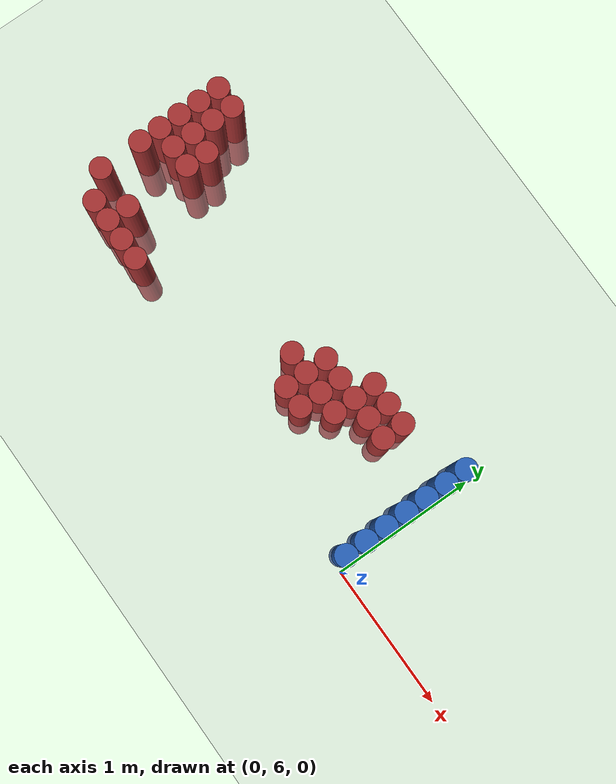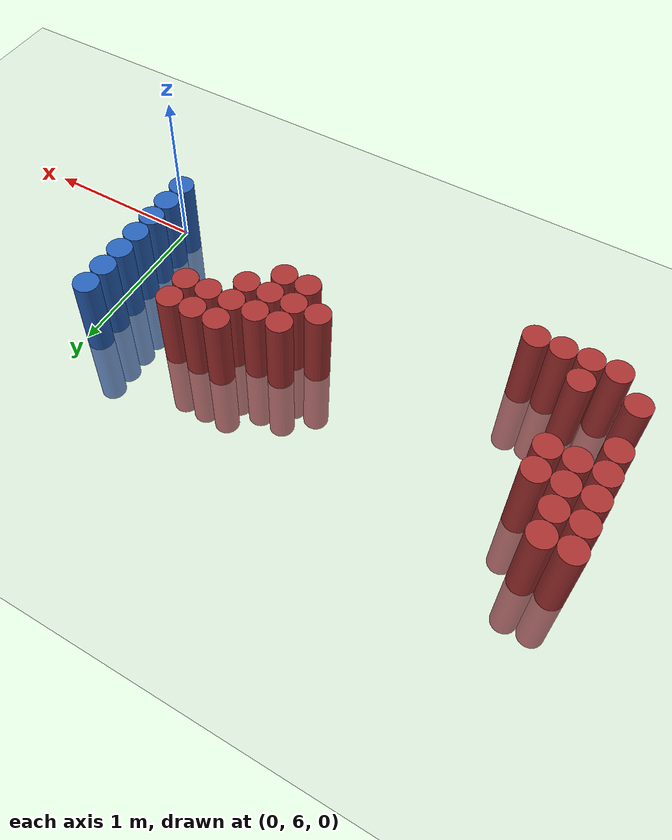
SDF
<sdf version="1.6">
 <world name="default">
  <model name="ground_plane">
   <static>1</static>
   <link name="link">
    <collision name="collision">
     <geometry><plane><normal>0 0 1</normal><size>100 100</size></plane></geometry>
     <surface><friction><ode><mu>100</mu><mu2>50</mu2></ode></friction></surface>
    </collision>
    <visual name="visual">
     <cast_shadows>0</cast_shadows>
     <geometry><plane><normal>0 0 1</normal><size>100 100</size></plane></geometry>
     <material>
      <script><uri>file://media/materials/scripts/gazebo.material</uri><name>Gazebo/Grey</name></script>
     </material>
    </visual>
   </link>
  </model>
  <model name="unit_cylinder_202">
   <static>1</static>
   <pose>-2.925000 6.225000 0.000000 0.000000 0.000000 0.000000</pose>
   <link name="link">
    <inertial>
     <mass>1</mass>
     <inertia><ixx>0.145833</ixx><ixy>0</ixy><ixz>0</ixz><iyy>0.145833</iyy><iyz>0</iyz><izz>0.125</izz></inertia>
    </inertial>
    <collision name="collision">
     <geometry><cylinder><radius>0.075000</radius><length>1</length></cylinder></geometry>
    </collision>
    <visual name="visual">
     <geometry><cylinder><radius>0.075000</radius><length>1</length></cylinder></geometry>
     <material>
      <ambient>0.648000 0.192000 0.192000 1</ambient>
      <diffuse>0.648000 0.192000 0.192000 1</diffuse>
     </material>
     <material>
      <script><name>Gazebo/Grey</name><uri>file://media/materials/scripts/gazebo.material</uri></script>
     </material>
    </visual>
    <sensor name="sensor_contact" type="contact"><contact><collision>collision</collision></contact></sensor>
   </link>
   <plugin filename="gz-sim-touchplugin-system" name="gz::sim::systems::TouchPlugin">
    <target>robot</target>
    <namespace>robot</namespace>
    <time>0.001</time>
    <enabled>true</enabled>
   </plugin>
  </model>
  <model name="unit_cylinder_203">
   <static>1</static>
   <pose>-2.925000 6.525000 0.000000 0.000000 0.000000 0.000000</pose>
   <link name="link">
    <inertial>
     <mass>1</mass>
     <inertia><ixx>0.145833</ixx><ixy>0</ixy><ixz>0</ixz><iyy>0.145833</iyy><iyz>0</iyz><izz>0.125</izz></inertia>
    </inertial>
    <collision name="collision">
     <geometry><cylinder><radius>0.075000</radius><length>1</length></cylinder></geometry>
    </collision>
    <visual name="visual">
     <geometry><cylinder><radius>0.075000</radius><length>1</length></cylinder></geometry>
     <material>
      <ambient>0.648000 0.192000 0.192000 1</ambient>
      <diffuse>0.648000 0.192000 0.192000 1</diffuse>
     </material>
     <material>
      <script><name>Gazebo/Grey</name><uri>file://media/materials/scripts/gazebo.material</uri></script>
     </material>
    </visual>
    <sensor name="sensor_contact" type="contact"><contact><collision>collision</collision></contact></sensor>
   </link>
   <plugin filename="gz-sim-touchplugin-system" name="gz::sim::systems::TouchPlugin">
    <target>robot</target>
    <namespace>robot</namespace>
    <time>0.001</time>
    <enabled>true</enabled>
   </plugin>
  </model>
  <model name="unit_cylinder_204">
   <static>1</static>
   <pose>-2.925000 6.675000 0.000000 0.000000 0.000000 0.000000</pose>
   <link name="link">
    <inertial>
     <mass>1</mass>
     <inertia><ixx>0.145833</ixx><ixy>0</ixy><ixz>0</ixz><iyy>0.145833</iyy><iyz>0</iyz><izz>0.125</izz></inertia>
    </inertial>
    <collision name="collision">
     <geometry><cylinder><radius>0.075000</radius><length>1</length></cylinder></geometry>
    </collision>
    <visual name="visual">
     <geometry><cylinder><radius>0.075000</radius><length>1</length></cylinder></geometry>
     <material>
      <ambient>0.648000 0.192000 0.192000 1</ambient>
      <diffuse>0.648000 0.192000 0.192000 1</diffuse>
     </material>
     <material>
      <script><name>Gazebo/Grey</name><uri>file://media/materials/scripts/gazebo.material</uri></script>
     </material>
    </visual>
    <sensor name="sensor_contact" type="contact"><contact><collision>collision</collision></contact></sensor>
   </link>
   <plugin filename="gz-sim-touchplugin-system" name="gz::sim::systems::TouchPlugin">
    <target>robot</target>
    <namespace>robot</namespace>
    <time>0.001</time>
    <enabled>true</enabled>
   </plugin>
  </model>
  <model name="unit_cylinder_205">
   <static>1</static>
   <pose>-2.925000 6.825000 0.000000 0.000000 0.000000 0.000000</pose>
   <link name="link">
    <inertial>
     <mass>1</mass>
     <inertia><ixx>0.145833</ixx><ixy>0</ixy><ixz>0</ixz><iyy>0.145833</iyy><iyz>0</iyz><izz>0.125</izz></inertia>
    </inertial>
    <collision name="collision">
     <geometry><cylinder><radius>0.075000</radius><length>1</length></cylinder></geometry>
    </collision>
    <visual name="visual">
     <geometry><cylinder><radius>0.075000</radius><length>1</length></cylinder></geometry>
     <material>
      <ambient>0.648000 0.192000 0.192000 1</ambient>
      <diffuse>0.648000 0.192000 0.192000 1</diffuse>
     </material>
     <material>
      <script><name>Gazebo/Grey</name><uri>file://media/materials/scripts/gazebo.material</uri></script>
     </material>
    </visual>
    <sensor name="sensor_contact" type="contact"><contact><collision>collision</collision></contact></sensor>
   </link>
   <plugin filename="gz-sim-touchplugin-system" name="gz::sim::systems::TouchPlugin">
    <target>robot</target>
    <namespace>robot</namespace>
    <time>0.001</time>
    <enabled>true</enabled>
   </plugin>
  </model>
  <model name="unit_cylinder_206">
   <static>1</static>
   <pose>-2.925000 6.975000 0.000000 0.000000 0.000000 0.000000</pose>
   <link name="link">
    <inertial>
     <mass>1</mass>
     <inertia><ixx>0.145833</ixx><ixy>0</ixy><ixz>0</ixz><iyy>0.145833</iyy><iyz>0</iyz><izz>0.125</izz></inertia>
    </inertial>
    <collision name="collision">
     <geometry><cylinder><radius>0.075000</radius><length>1</length></cylinder></geometry>
    </collision>
    <visual name="visual">
     <geometry><cylinder><radius>0.075000</radius><length>1</length></cylinder></geometry>
     <material>
      <ambient>0.648000 0.192000 0.192000 1</ambient>
      <diffuse>0.648000 0.192000 0.192000 1</diffuse>
     </material>
     <material>
      <script><name>Gazebo/Grey</name><uri>file://media/materials/scripts/gazebo.material</uri></script>
     </material>
    </visual>
    <sensor name="sensor_contact" type="contact"><contact><collision>collision</collision></contact></sensor>
   </link>
   <plugin filename="gz-sim-touchplugin-system" name="gz::sim::systems::TouchPlugin">
    <target>robot</target>
    <namespace>robot</namespace>
    <time>0.001</time>
    <enabled>true</enabled>
   </plugin>
  </model>
  <model name="unit_cylinder_207">
   <static>1</static>
   <pose>-2.925000 7.125000 0.000000 0.000000 0.000000 0.000000</pose>
   <link name="link">
    <inertial>
     <mass>1</mass>
     <inertia><ixx>0.145833</ixx><ixy>0</ixy><ixz>0</ixz><iyy>0.145833</iyy><iyz>0</iyz><izz>0.125</izz></inertia>
    </inertial>
    <collision name="collision">
     <geometry><cylinder><radius>0.075000</radius><length>1</length></cylinder></geometry>
    </collision>
    <visual name="visual">
     <geometry><cylinder><radius>0.075000</radius><length>1</length></cylinder></geometry>
     <material>
      <ambient>0.648000 0.192000 0.192000 1</ambient>
      <diffuse>0.648000 0.192000 0.192000 1</diffuse>
     </material>
     <material>
      <script><name>Gazebo/Grey</name><uri>file://media/materials/scripts/gazebo.material</uri></script>
     </material>
    </visual>
    <sensor name="sensor_contact" type="contact"><contact><collision>collision</collision></contact></sensor>
   </link>
   <plugin filename="gz-sim-touchplugin-system" name="gz::sim::systems::TouchPlugin">
    <target>robot</target>
    <namespace>robot</namespace>
    <time>0.001</time>
    <enabled>true</enabled>
   </plugin>
  </model>
  <model name="unit_cylinder_212">
   <static>1</static>
   <pose>-2.775000 6.075000 0.000000 0.000000 0.000000 0.000000</pose>
   <link name="link">
    <inertial>
     <mass>1</mass>
     <inertia><ixx>0.145833</ixx><ixy>0</ixy><ixz>0</ixz><iyy>0.145833</iyy><iyz>0</iyz><izz>0.125</izz></inertia>
    </inertial>
    <collision name="collision">
     <geometry><cylinder><radius>0.075000</radius><length>1</length></cylinder></geometry>
    </collision>
    <visual name="visual">
     <geometry><cylinder><radius>0.075000</radius><length>1</length></cylinder></geometry>
     <material>
      <ambient>0.648000 0.192000 0.192000 1</ambient>
      <diffuse>0.648000 0.192000 0.192000 1</diffuse>
     </material>
     <material>
      <script><name>Gazebo/Grey</name><uri>file://media/materials/scripts/gazebo.material</uri></script>
     </material>
    </visual>
    <sensor name="sensor_contact" type="contact"><contact><collision>collision</collision></contact></sensor>
   </link>
   <plugin filename="gz-sim-touchplugin-system" name="gz::sim::systems::TouchPlugin">
    <target>robot</target>
    <namespace>robot</namespace>
    <time>0.001</time>
    <enabled>true</enabled>
   </plugin>
  </model>
  <model name="unit_cylinder_213">
   <static>1</static>
   <pose>-2.775000 6.675000 0.000000 0.000000 0.000000 0.000000</pose>
   <link name="link">
    <inertial>
     <mass>1</mass>
     <inertia><ixx>0.145833</ixx><ixy>0</ixy><ixz>0</ixz><iyy>0.145833</iyy><iyz>0</iyz><izz>0.125</izz></inertia>
    </inertial>
    <collision name="collision">
     <geometry><cylinder><radius>0.075000</radius><length>1</length></cylinder></geometry>
    </collision>
    <visual name="visual">
     <geometry><cylinder><radius>0.075000</radius><length>1</length></cylinder></geometry>
     <material>
      <ambient>0.648000 0.192000 0.192000 1</ambient>
      <diffuse>0.648000 0.192000 0.192000 1</diffuse>
     </material>
     <material>
      <script><name>Gazebo/Grey</name><uri>file://media/materials/scripts/gazebo.material</uri></script>
     </material>
    </visual>
    <sensor name="sensor_contact" type="contact"><contact><collision>collision</collision></contact></sensor>
   </link>
   <plugin filename="gz-sim-touchplugin-system" name="gz::sim::systems::TouchPlugin">
    <target>robot</target>
    <namespace>robot</namespace>
    <time>0.001</time>
    <enabled>true</enabled>
   </plugin>
  </model>
  <model name="unit_cylinder_214">
   <static>1</static>
   <pose>-2.775000 6.825000 0.000000 0.000000 0.000000 0.000000</pose>
   <link name="link">
    <inertial>
     <mass>1</mass>
     <inertia><ixx>0.145833</ixx><ixy>0</ixy><ixz>0</ixz><iyy>0.145833</iyy><iyz>0</iyz><izz>0.125</izz></inertia>
    </inertial>
    <collision name="collision">
     <geometry><cylinder><radius>0.075000</radius><length>1</length></cylinder></geometry>
    </collision>
    <visual name="visual">
     <geometry><cylinder><radius>0.075000</radius><length>1</length></cylinder></geometry>
     <material>
      <ambient>0.648000 0.192000 0.192000 1</ambient>
      <diffuse>0.648000 0.192000 0.192000 1</diffuse>
     </material>
     <material>
      <script><name>Gazebo/Grey</name><uri>file://media/materials/scripts/gazebo.material</uri></script>
     </material>
    </visual>
    <sensor name="sensor_contact" type="contact"><contact><collision>collision</collision></contact></sensor>
   </link>
   <plugin filename="gz-sim-touchplugin-system" name="gz::sim::systems::TouchPlugin">
    <target>robot</target>
    <namespace>robot</namespace>
    <time>0.001</time>
    <enabled>true</enabled>
   </plugin>
  </model>
  <model name="unit_cylinder_215">
   <static>1</static>
   <pose>-2.775000 6.975000 0.000000 0.000000 0.000000 0.000000</pose>
   <link name="link">
    <inertial>
     <mass>1</mass>
     <inertia><ixx>0.145833</ixx><ixy>0</ixy><ixz>0</ixz><iyy>0.145833</iyy><iyz>0</iyz><izz>0.125</izz></inertia>
    </inertial>
    <collision name="collision">
     <geometry><cylinder><radius>0.075000</radius><length>1</length></cylinder></geometry>
    </collision>
    <visual name="visual">
     <geometry><cylinder><radius>0.075000</radius><length>1</length></cylinder></geometry>
     <material>
      <ambient>0.648000 0.192000 0.192000 1</ambient>
      <diffuse>0.648000 0.192000 0.192000 1</diffuse>
     </material>
     <material>
      <script><name>Gazebo/Grey</name><uri>file://media/materials/scripts/gazebo.material</uri></script>
     </material>
    </visual>
    <sensor name="sensor_contact" type="contact"><contact><collision>collision</collision></contact></sensor>
   </link>
   <plugin filename="gz-sim-touchplugin-system" name="gz::sim::systems::TouchPlugin">
    <target>robot</target>
    <namespace>robot</namespace>
    <time>0.001</time>
    <enabled>true</enabled>
   </plugin>
  </model>
  <model name="unit_cylinder_216">
   <static>1</static>
   <pose>-2.775000 7.125000 0.000000 0.000000 0.000000 0.000000</pose>
   <link name="link">
    <inertial>
     <mass>1</mass>
     <inertia><ixx>0.145833</ixx><ixy>0</ixy><ixz>0</ixz><iyy>0.145833</iyy><iyz>0</iyz><izz>0.125</izz></inertia>
    </inertial>
    <collision name="collision">
     <geometry><cylinder><radius>0.075000</radius><length>1</length></cylinder></geometry>
    </collision>
    <visual name="visual">
     <geometry><cylinder><radius>0.075000</radius><length>1</length></cylinder></geometry>
     <material>
      <ambient>0.648000 0.192000 0.192000 1</ambient>
      <diffuse>0.648000 0.192000 0.192000 1</diffuse>
     </material>
     <material>
      <script><name>Gazebo/Grey</name><uri>file://media/materials/scripts/gazebo.material</uri></script>
     </material>
    </visual>
    <sensor name="sensor_contact" type="contact"><contact><collision>collision</collision></contact></sensor>
   </link>
   <plugin filename="gz-sim-touchplugin-system" name="gz::sim::systems::TouchPlugin">
    <target>robot</target>
    <namespace>robot</namespace>
    <time>0.001</time>
    <enabled>true</enabled>
   </plugin>
  </model>
  <model name="unit_cylinder_225">
   <static>1</static>
   <pose>-2.625000 6.075000 0.000000 0.000000 0.000000 0.000000</pose>
   <link name="link">
    <inertial>
     <mass>1</mass>
     <inertia><ixx>0.145833</ixx><ixy>0</ixy><ixz>0</ixz><iyy>0.145833</iyy><iyz>0</iyz><izz>0.125</izz></inertia>
    </inertial>
    <collision name="collision">
     <geometry><cylinder><radius>0.075000</radius><length>1</length></cylinder></geometry>
    </collision>
    <visual name="visual">
     <geometry><cylinder><radius>0.075000</radius><length>1</length></cylinder></geometry>
     <material>
      <ambient>0.648000 0.192000 0.192000 1</ambient>
      <diffuse>0.648000 0.192000 0.192000 1</diffuse>
     </material>
     <material>
      <script><name>Gazebo/Grey</name><uri>file://media/materials/scripts/gazebo.material</uri></script>
     </material>
    </visual>
    <sensor name="sensor_contact" type="contact"><contact><collision>collision</collision></contact></sensor>
   </link>
   <plugin filename="gz-sim-touchplugin-system" name="gz::sim::systems::TouchPlugin">
    <target>robot</target>
    <namespace>robot</namespace>
    <time>0.001</time>
    <enabled>true</enabled>
   </plugin>
  </model>
  <model name="unit_cylinder_226">
   <static>1</static>
   <pose>-2.625000 6.225000 0.000000 0.000000 0.000000 0.000000</pose>
   <link name="link">
    <inertial>
     <mass>1</mass>
     <inertia><ixx>0.145833</ixx><ixy>0</ixy><ixz>0</ixz><iyy>0.145833</iyy><iyz>0</iyz><izz>0.125</izz></inertia>
    </inertial>
    <collision name="collision">
     <geometry><cylinder><radius>0.075000</radius><length>1</length></cylinder></geometry>
    </collision>
    <visual name="visual">
     <geometry><cylinder><radius>0.075000</radius><length>1</length></cylinder></geometry>
     <material>
      <ambient>0.648000 0.192000 0.192000 1</ambient>
      <diffuse>0.648000 0.192000 0.192000 1</diffuse>
     </material>
     <material>
      <script><name>Gazebo/Grey</name><uri>file://media/materials/scripts/gazebo.material</uri></script>
     </material>
    </visual>
    <sensor name="sensor_contact" type="contact"><contact><collision>collision</collision></contact></sensor>
   </link>
   <plugin filename="gz-sim-touchplugin-system" name="gz::sim::systems::TouchPlugin">
    <target>robot</target>
    <namespace>robot</namespace>
    <time>0.001</time>
    <enabled>true</enabled>
   </plugin>
  </model>
  <model name="unit_cylinder_227">
   <static>1</static>
   <pose>-2.625000 6.675000 0.000000 0.000000 0.000000 0.000000</pose>
   <link name="link">
    <inertial>
     <mass>1</mass>
     <inertia><ixx>0.145833</ixx><ixy>0</ixy><ixz>0</ixz><iyy>0.145833</iyy><iyz>0</iyz><izz>0.125</izz></inertia>
    </inertial>
    <collision name="collision">
     <geometry><cylinder><radius>0.075000</radius><length>1</length></cylinder></geometry>
    </collision>
    <visual name="visual">
     <geometry><cylinder><radius>0.075000</radius><length>1</length></cylinder></geometry>
     <material>
      <ambient>0.648000 0.192000 0.192000 1</ambient>
      <diffuse>0.648000 0.192000 0.192000 1</diffuse>
     </material>
     <material>
      <script><name>Gazebo/Grey</name><uri>file://media/materials/scripts/gazebo.material</uri></script>
     </material>
    </visual>
    <sensor name="sensor_contact" type="contact"><contact><collision>collision</collision></contact></sensor>
   </link>
   <plugin filename="gz-sim-touchplugin-system" name="gz::sim::systems::TouchPlugin">
    <target>robot</target>
    <namespace>robot</namespace>
    <time>0.001</time>
    <enabled>true</enabled>
   </plugin>
  </model>
  <model name="unit_cylinder_228">
   <static>1</static>
   <pose>-2.625000 6.825000 0.000000 0.000000 0.000000 0.000000</pose>
   <link name="link">
    <inertial>
     <mass>1</mass>
     <inertia><ixx>0.145833</ixx><ixy>0</ixy><ixz>0</ixz><iyy>0.145833</iyy><iyz>0</iyz><izz>0.125</izz></inertia>
    </inertial>
    <collision name="collision">
     <geometry><cylinder><radius>0.075000</radius><length>1</length></cylinder></geometry>
    </collision>
    <visual name="visual">
     <geometry><cylinder><radius>0.075000</radius><length>1</length></cylinder></geometry>
     <material>
      <ambient>0.648000 0.192000 0.192000 1</ambient>
      <diffuse>0.648000 0.192000 0.192000 1</diffuse>
     </material>
     <material>
      <script><name>Gazebo/Grey</name><uri>file://media/materials/scripts/gazebo.material</uri></script>
     </material>
    </visual>
    <sensor name="sensor_contact" type="contact"><contact><collision>collision</collision></contact></sensor>
   </link>
   <plugin filename="gz-sim-touchplugin-system" name="gz::sim::systems::TouchPlugin">
    <target>robot</target>
    <namespace>robot</namespace>
    <time>0.001</time>
    <enabled>true</enabled>
   </plugin>
  </model>
  <model name="unit_cylinder_235">
   <static>1</static>
   <pose>-2.475000 6.075000 0.000000 0.000000 0.000000 0.000000</pose>
   <link name="link">
    <inertial>
     <mass>1</mass>
     <inertia><ixx>0.145833</ixx><ixy>0</ixy><ixz>0</ixz><iyy>0.145833</iyy><iyz>0</iyz><izz>0.125</izz></inertia>
    </inertial>
    <collision name="collision">
     <geometry><cylinder><radius>0.075000</radius><length>1</length></cylinder></geometry>
    </collision>
    <visual name="visual">
     <geometry><cylinder><radius>0.075000</radius><length>1</length></cylinder></geometry>
     <material>
      <ambient>0.648000 0.192000 0.192000 1</ambient>
      <diffuse>0.648000 0.192000 0.192000 1</diffuse>
     </material>
     <material>
      <script><name>Gazebo/Grey</name><uri>file://media/materials/scripts/gazebo.material</uri></script>
     </material>
    </visual>
    <sensor name="sensor_contact" type="contact"><contact><collision>collision</collision></contact></sensor>
   </link>
   <plugin filename="gz-sim-touchplugin-system" name="gz::sim::systems::TouchPlugin">
    <target>robot</target>
    <namespace>robot</namespace>
    <time>0.001</time>
    <enabled>true</enabled>
   </plugin>
  </model>
  <model name="unit_cylinder_236">
   <static>1</static>
   <pose>-2.325000 6.075000 0.000000 0.000000 0.000000 0.000000</pose>
   <link name="link">
    <inertial>
     <mass>1</mass>
     <inertia><ixx>0.145833</ixx><ixy>0</ixy><ixz>0</ixz><iyy>0.145833</iyy><iyz>0</iyz><izz>0.125</izz></inertia>
    </inertial>
    <collision name="collision">
     <geometry><cylinder><radius>0.075000</radius><length>1</length></cylinder></geometry>
    </collision>
    <visual name="visual">
     <geometry><cylinder><radius>0.075000</radius><length>1</length></cylinder></geometry>
     <material>
      <ambient>0.648000 0.192000 0.192000 1</ambient>
      <diffuse>0.648000 0.192000 0.192000 1</diffuse>
     </material>
     <material>
      <script><name>Gazebo/Grey</name><uri>file://media/materials/scripts/gazebo.material</uri></script>
     </material>
    </visual>
    <sensor name="sensor_contact" type="contact"><contact><collision>collision</collision></contact></sensor>
   </link>
   <plugin filename="gz-sim-touchplugin-system" name="gz::sim::systems::TouchPlugin">
    <target>robot</target>
    <namespace>robot</namespace>
    <time>0.001</time>
    <enabled>true</enabled>
   </plugin>
  </model>
  <model name="unit_cylinder_257">
   <static>1</static>
   <pose>-1.275000 6.525000 0.000000 0.000000 0.000000 0.000000</pose>
   <link name="link">
    <inertial>
     <mass>1</mass>
     <inertia><ixx>0.145833</ixx><ixy>0</ixy><ixz>0</ixz><iyy>0.145833</iyy><iyz>0</iyz><izz>0.125</izz></inertia>
    </inertial>
    <collision name="collision">
     <geometry><cylinder><radius>0.075000</radius><length>1</length></cylinder></geometry>
    </collision>
    <visual name="visual">
     <geometry><cylinder><radius>0.075000</radius><length>1</length></cylinder></geometry>
     <material>
      <ambient>0.648000 0.192000 0.192000 1</ambient>
      <diffuse>0.648000 0.192000 0.192000 1</diffuse>
     </material>
     <material>
      <script><name>Gazebo/Grey</name><uri>file://media/materials/scripts/gazebo.material</uri></script>
     </material>
    </visual>
    <sensor name="sensor_contact" type="contact"><contact><collision>collision</collision></contact></sensor>
   </link>
   <plugin filename="gz-sim-touchplugin-system" name="gz::sim::systems::TouchPlugin">
    <target>robot</target>
    <namespace>robot</namespace>
    <time>0.001</time>
    <enabled>true</enabled>
   </plugin>
  </model>
  <model name="unit_cylinder_261">
   <static>1</static>
   <pose>-1.125000 6.375000 0.000000 0.000000 0.000000 0.000000</pose>
   <link name="link">
    <inertial>
     <mass>1</mass>
     <inertia><ixx>0.145833</ixx><ixy>0</ixy><ixz>0</ixz><iyy>0.145833</iyy><iyz>0</iyz><izz>0.125</izz></inertia>
    </inertial>
    <collision name="collision">
     <geometry><cylinder><radius>0.075000</radius><length>1</length></cylinder></geometry>
    </collision>
    <visual name="visual">
     <geometry><cylinder><radius>0.075000</radius><length>1</length></cylinder></geometry>
     <material>
      <ambient>0.648000 0.192000 0.192000 1</ambient>
      <diffuse>0.648000 0.192000 0.192000 1</diffuse>
     </material>
     <material>
      <script><name>Gazebo/Grey</name><uri>file://media/materials/scripts/gazebo.material</uri></script>
     </material>
    </visual>
    <sensor name="sensor_contact" type="contact"><contact><collision>collision</collision></contact></sensor>
   </link>
   <plugin filename="gz-sim-touchplugin-system" name="gz::sim::systems::TouchPlugin">
    <target>robot</target>
    <namespace>robot</namespace>
    <time>0.001</time>
    <enabled>true</enabled>
   </plugin>
  </model>
  <model name="unit_cylinder_262">
   <static>1</static>
   <pose>-1.125000 6.525000 0.000000 0.000000 0.000000 0.000000</pose>
   <link name="link">
    <inertial>
     <mass>1</mass>
     <inertia><ixx>0.145833</ixx><ixy>0</ixy><ixz>0</ixz><iyy>0.145833</iyy><iyz>0</iyz><izz>0.125</izz></inertia>
    </inertial>
    <collision name="collision">
     <geometry><cylinder><radius>0.075000</radius><length>1</length></cylinder></geometry>
    </collision>
    <visual name="visual">
     <geometry><cylinder><radius>0.075000</radius><length>1</length></cylinder></geometry>
     <material>
      <ambient>0.648000 0.192000 0.192000 1</ambient>
      <diffuse>0.648000 0.192000 0.192000 1</diffuse>
     </material>
     <material>
      <script><name>Gazebo/Grey</name><uri>file://media/materials/scripts/gazebo.material</uri></script>
     </material>
    </visual>
    <sensor name="sensor_contact" type="contact"><contact><collision>collision</collision></contact></sensor>
   </link>
   <plugin filename="gz-sim-touchplugin-system" name="gz::sim::systems::TouchPlugin">
    <target>robot</target>
    <namespace>robot</namespace>
    <time>0.001</time>
    <enabled>true</enabled>
   </plugin>
  </model>
  <model name="unit_cylinder_263">
   <static>1</static>
   <pose>-1.125000 6.675000 0.000000 0.000000 0.000000 0.000000</pose>
   <link name="link">
    <inertial>
     <mass>1</mass>
     <inertia><ixx>0.145833</ixx><ixy>0</ixy><ixz>0</ixz><iyy>0.145833</iyy><iyz>0</iyz><izz>0.125</izz></inertia>
    </inertial>
    <collision name="collision">
     <geometry><cylinder><radius>0.075000</radius><length>1</length></cylinder></geometry>
    </collision>
    <visual name="visual">
     <geometry><cylinder><radius>0.075000</radius><length>1</length></cylinder></geometry>
     <material>
      <ambient>0.648000 0.192000 0.192000 1</ambient>
      <diffuse>0.648000 0.192000 0.192000 1</diffuse>
     </material>
     <material>
      <script><name>Gazebo/Grey</name><uri>file://media/materials/scripts/gazebo.material</uri></script>
     </material>
    </visual>
    <sensor name="sensor_contact" type="contact"><contact><collision>collision</collision></contact></sensor>
   </link>
   <plugin filename="gz-sim-touchplugin-system" name="gz::sim::systems::TouchPlugin">
    <target>robot</target>
    <namespace>robot</namespace>
    <time>0.001</time>
    <enabled>true</enabled>
   </plugin>
  </model>
  <model name="unit_cylinder_269">
   <static>1</static>
   <pose>-0.975000 6.375000 0.000000 0.000000 0.000000 0.000000</pose>
   <link name="link">
    <inertial>
     <mass>1</mass>
     <inertia><ixx>0.145833</ixx><ixy>0</ixy><ixz>0</ixz><iyy>0.145833</iyy><iyz>0</iyz><izz>0.125</izz></inertia>
    </inertial>
    <collision name="collision">
     <geometry><cylinder><radius>0.075000</radius><length>1</length></cylinder></geometry>
    </collision>
    <visual name="visual">
     <geometry><cylinder><radius>0.075000</radius><length>1</length></cylinder></geometry>
     <material>
      <ambient>0.648000 0.192000 0.192000 1</ambient>
      <diffuse>0.648000 0.192000 0.192000 1</diffuse>
     </material>
     <material>
      <script><name>Gazebo/Grey</name><uri>file://media/materials/scripts/gazebo.material</uri></script>
     </material>
    </visual>
    <sensor name="sensor_contact" type="contact"><contact><collision>collision</collision></contact></sensor>
   </link>
   <plugin filename="gz-sim-touchplugin-system" name="gz::sim::systems::TouchPlugin">
    <target>robot</target>
    <namespace>robot</namespace>
    <time>0.001</time>
    <enabled>true</enabled>
   </plugin>
  </model>
  <model name="unit_cylinder_270">
   <static>1</static>
   <pose>-0.975000 6.525000 0.000000 0.000000 0.000000 0.000000</pose>
   <link name="link">
    <inertial>
     <mass>1</mass>
     <inertia><ixx>0.145833</ixx><ixy>0</ixy><ixz>0</ixz><iyy>0.145833</iyy><iyz>0</iyz><izz>0.125</izz></inertia>
    </inertial>
    <collision name="collision">
     <geometry><cylinder><radius>0.075000</radius><length>1</length></cylinder></geometry>
    </collision>
    <visual name="visual">
     <geometry><cylinder><radius>0.075000</radius><length>1</length></cylinder></geometry>
     <material>
      <ambient>0.648000 0.192000 0.192000 1</ambient>
      <diffuse>0.648000 0.192000 0.192000 1</diffuse>
     </material>
     <material>
      <script><name>Gazebo/Grey</name><uri>file://media/materials/scripts/gazebo.material</uri></script>
     </material>
    </visual>
    <sensor name="sensor_contact" type="contact"><contact><collision>collision</collision></contact></sensor>
   </link>
   <plugin filename="gz-sim-touchplugin-system" name="gz::sim::systems::TouchPlugin">
    <target>robot</target>
    <namespace>robot</namespace>
    <time>0.001</time>
    <enabled>true</enabled>
   </plugin>
  </model>
  <model name="unit_cylinder_271">
   <static>1</static>
   <pose>-0.975000 6.675000 0.000000 0.000000 0.000000 0.000000</pose>
   <link name="link">
    <inertial>
     <mass>1</mass>
     <inertia><ixx>0.145833</ixx><ixy>0</ixy><ixz>0</ixz><iyy>0.145833</iyy><iyz>0</iyz><izz>0.125</izz></inertia>
    </inertial>
    <collision name="collision">
     <geometry><cylinder><radius>0.075000</radius><length>1</length></cylinder></geometry>
    </collision>
    <visual name="visual">
     <geometry><cylinder><radius>0.075000</radius><length>1</length></cylinder></geometry>
     <material>
      <ambient>0.648000 0.192000 0.192000 1</ambient>
      <diffuse>0.648000 0.192000 0.192000 1</diffuse>
     </material>
     <material>
      <script><name>Gazebo/Grey</name><uri>file://media/materials/scripts/gazebo.material</uri></script>
     </material>
    </visual>
    <sensor name="sensor_contact" type="contact"><contact><collision>collision</collision></contact></sensor>
   </link>
   <plugin filename="gz-sim-touchplugin-system" name="gz::sim::systems::TouchPlugin">
    <target>robot</target>
    <namespace>robot</namespace>
    <time>0.001</time>
    <enabled>true</enabled>
   </plugin>
  </model>
  <model name="unit_cylinder_276">
   <static>1</static>
   <pose>-0.825000 6.525000 0.000000 0.000000 0.000000 0.000000</pose>
   <link name="link">
    <inertial>
     <mass>1</mass>
     <inertia><ixx>0.145833</ixx><ixy>0</ixy><ixz>0</ixz><iyy>0.145833</iyy><iyz>0</iyz><izz>0.125</izz></inertia>
    </inertial>
    <collision name="collision">
     <geometry><cylinder><radius>0.075000</radius><length>1</length></cylinder></geometry>
    </collision>
    <visual name="visual">
     <geometry><cylinder><radius>0.075000</radius><length>1</length></cylinder></geometry>
     <material>
      <ambient>0.648000 0.192000 0.192000 1</ambient>
      <diffuse>0.648000 0.192000 0.192000 1</diffuse>
     </material>
     <material>
      <script><name>Gazebo/Grey</name><uri>file://media/materials/scripts/gazebo.material</uri></script>
     </material>
    </visual>
    <sensor name="sensor_contact" type="contact"><contact><collision>collision</collision></contact></sensor>
   </link>
   <plugin filename="gz-sim-touchplugin-system" name="gz::sim::systems::TouchPlugin">
    <target>robot</target>
    <namespace>robot</namespace>
    <time>0.001</time>
    <enabled>true</enabled>
   </plugin>
  </model>
  <model name="unit_cylinder_277">
   <static>1</static>
   <pose>-0.825000 6.675000 0.000000 0.000000 0.000000 0.000000</pose>
   <link name="link">
    <inertial>
     <mass>1</mass>
     <inertia><ixx>0.145833</ixx><ixy>0</ixy><ixz>0</ixz><iyy>0.145833</iyy><iyz>0</iyz><izz>0.125</izz></inertia>
    </inertial>
    <collision name="collision">
     <geometry><cylinder><radius>0.075000</radius><length>1</length></cylinder></geometry>
    </collision>
    <visual name="visual">
     <geometry><cylinder><radius>0.075000</radius><length>1</length></cylinder></geometry>
     <material>
      <ambient>0.648000 0.192000 0.192000 1</ambient>
      <diffuse>0.648000 0.192000 0.192000 1</diffuse>
     </material>
     <material>
      <script><name>Gazebo/Grey</name><uri>file://media/materials/scripts/gazebo.material</uri></script>
     </material>
    </visual>
    <sensor name="sensor_contact" type="contact"><contact><collision>collision</collision></contact></sensor>
   </link>
   <plugin filename="gz-sim-touchplugin-system" name="gz::sim::systems::TouchPlugin">
    <target>robot</target>
    <namespace>robot</namespace>
    <time>0.001</time>
    <enabled>true</enabled>
   </plugin>
  </model>
  <model name="unit_cylinder_278">
   <static>1</static>
   <pose>-0.825000 6.825000 0.000000 0.000000 0.000000 0.000000</pose>
   <link name="link">
    <inertial>
     <mass>1</mass>
     <inertia><ixx>0.145833</ixx><ixy>0</ixy><ixz>0</ixz><iyy>0.145833</iyy><iyz>0</iyz><izz>0.125</izz></inertia>
    </inertial>
    <collision name="collision">
     <geometry><cylinder><radius>0.075000</radius><length>1</length></cylinder></geometry>
    </collision>
    <visual name="visual">
     <geometry><cylinder><radius>0.075000</radius><length>1</length></cylinder></geometry>
     <material>
      <ambient>0.648000 0.192000 0.192000 1</ambient>
      <diffuse>0.648000 0.192000 0.192000 1</diffuse>
     </material>
     <material>
      <script><name>Gazebo/Grey</name><uri>file://media/materials/scripts/gazebo.material</uri></script>
     </material>
    </visual>
    <sensor name="sensor_contact" type="contact"><contact><collision>collision</collision></contact></sensor>
   </link>
   <plugin filename="gz-sim-touchplugin-system" name="gz::sim::systems::TouchPlugin">
    <target>robot</target>
    <namespace>robot</namespace>
    <time>0.001</time>
    <enabled>true</enabled>
   </plugin>
  </model>
  <model name="unit_cylinder_283">
   <static>1</static>
   <pose>-0.675000 6.675000 0.000000 0.000000 0.000000 0.000000</pose>
   <link name="link">
    <inertial>
     <mass>1</mass>
     <inertia><ixx>0.145833</ixx><ixy>0</ixy><ixz>0</ixz><iyy>0.145833</iyy><iyz>0</iyz><izz>0.125</izz></inertia>
    </inertial>
    <collision name="collision">
     <geometry><cylinder><radius>0.075000</radius><length>1</length></cylinder></geometry>
    </collision>
    <visual name="visual">
     <geometry><cylinder><radius>0.075000</radius><length>1</length></cylinder></geometry>
     <material>
      <ambient>0.648000 0.192000 0.192000 1</ambient>
      <diffuse>0.648000 0.192000 0.192000 1</diffuse>
     </material>
     <material>
      <script><name>Gazebo/Grey</name><uri>file://media/materials/scripts/gazebo.material</uri></script>
     </material>
    </visual>
    <sensor name="sensor_contact" type="contact"><contact><collision>collision</collision></contact></sensor>
   </link>
   <plugin filename="gz-sim-touchplugin-system" name="gz::sim::systems::TouchPlugin">
    <target>robot</target>
    <namespace>robot</namespace>
    <time>0.001</time>
    <enabled>true</enabled>
   </plugin>
  </model>
  <model name="unit_cylinder_284">
   <static>1</static>
   <pose>-0.675000 6.825000 0.000000 0.000000 0.000000 0.000000</pose>
   <link name="link">
    <inertial>
     <mass>1</mass>
     <inertia><ixx>0.145833</ixx><ixy>0</ixy><ixz>0</ixz><iyy>0.145833</iyy><iyz>0</iyz><izz>0.125</izz></inertia>
    </inertial>
    <collision name="collision">
     <geometry><cylinder><radius>0.075000</radius><length>1</length></cylinder></geometry>
    </collision>
    <visual name="visual">
     <geometry><cylinder><radius>0.075000</radius><length>1</length></cylinder></geometry>
     <material>
      <ambient>0.648000 0.192000 0.192000 1</ambient>
      <diffuse>0.648000 0.192000 0.192000 1</diffuse>
     </material>
     <material>
      <script><name>Gazebo/Grey</name><uri>file://media/materials/scripts/gazebo.material</uri></script>
     </material>
    </visual>
    <sensor name="sensor_contact" type="contact"><contact><collision>collision</collision></contact></sensor>
   </link>
   <plugin filename="gz-sim-touchplugin-system" name="gz::sim::systems::TouchPlugin">
    <target>robot</target>
    <namespace>robot</namespace>
    <time>0.001</time>
    <enabled>true</enabled>
   </plugin>
  </model>
  <model name="unit_cylinder_288">
   <static>1</static>
   <pose>-0.525000 6.675000 0.000000 0.000000 0.000000 0.000000</pose>
   <link name="link">
    <inertial>
     <mass>1</mass>
     <inertia><ixx>0.145833</ixx><ixy>0</ixy><ixz>0</ixz><iyy>0.145833</iyy><iyz>0</iyz><izz>0.125</izz></inertia>
    </inertial>
    <collision name="collision">
     <geometry><cylinder><radius>0.075000</radius><length>1</length></cylinder></geometry>
    </collision>
    <visual name="visual">
     <geometry><cylinder><radius>0.075000</radius><length>1</length></cylinder></geometry>
     <material>
      <ambient>0.648000 0.192000 0.192000 1</ambient>
      <diffuse>0.648000 0.192000 0.192000 1</diffuse>
     </material>
     <material>
      <script><name>Gazebo/Grey</name><uri>file://media/materials/scripts/gazebo.material</uri></script>
     </material>
    </visual>
    <sensor name="sensor_contact" type="contact"><contact><collision>collision</collision></contact></sensor>
   </link>
   <plugin filename="gz-sim-touchplugin-system" name="gz::sim::systems::TouchPlugin">
    <target>robot</target>
    <namespace>robot</namespace>
    <time>0.001</time>
    <enabled>true</enabled>
   </plugin>
  </model>
  <model name="unit_cylinder_289">
   <static>1</static>
   <pose>-0.525000 6.825000 0.000000 0.000000 0.000000 0.000000</pose>
   <link name="link">
    <inertial>
     <mass>1</mass>
     <inertia><ixx>0.145833</ixx><ixy>0</ixy><ixz>0</ixz><iyy>0.145833</iyy><iyz>0</iyz><izz>0.125</izz></inertia>
    </inertial>
    <collision name="collision">
     <geometry><cylinder><radius>0.075000</radius><length>1</length></cylinder></geometry>
    </collision>
    <visual name="visual">
     <geometry><cylinder><radius>0.075000</radius><length>1</length></cylinder></geometry>
     <material>
      <ambient>0.648000 0.192000 0.192000 1</ambient>
      <diffuse>0.648000 0.192000 0.192000 1</diffuse>
     </material>
     <material>
      <script><name>Gazebo/Grey</name><uri>file://media/materials/scripts/gazebo.material</uri></script>
     </material>
    </visual>
    <sensor name="sensor_contact" type="contact"><contact><collision>collision</collision></contact></sensor>
   </link>
   <plugin filename="gz-sim-touchplugin-system" name="gz::sim::systems::TouchPlugin">
    <target>robot</target>
    <namespace>robot</namespace>
    <time>0.001</time>
    <enabled>true</enabled>
   </plugin>
  </model>
  <model name="unit_cylinder_314">
   <static>1</static>
   <pose>-0.075000 6.075000 0.000000 0.000000 0.000000 0.000000</pose>
   <link name="link">
    <inertial>
     <mass>1</mass>
     <inertia><ixx>0.145833</ixx><ixy>0</ixy><ixz>0</ixz><iyy>0.145833</iyy><iyz>0</iyz><izz>0.125</izz></inertia>
    </inertial>
    <collision name="collision">
     <geometry><cylinder><radius>0.075000</radius><length>1</length></cylinder></geometry>
    </collision>
    <visual name="visual">
     <geometry><cylinder><radius>0.075000</radius><length>1</length></cylinder></geometry>
     <material>
      <ambient>0.152000 0.379000 0.720000 1</ambient>
      <diffuse>0.152000 0.379000 0.720000 1</diffuse>
     </material>
     <material>
      <script><name>Gazebo/Grey</name><uri>file://media/materials/scripts/gazebo.material</uri></script>
     </material>
    </visual>
    <sensor name="sensor_contact" type="contact"><contact><collision>collision</collision></contact></sensor>
   </link>
   <plugin filename="gz-sim-touchplugin-system" name="gz::sim::systems::TouchPlugin">
    <target>robot</target>
    <namespace>robot</namespace>
    <time>0.001</time>
    <enabled>true</enabled>
   </plugin>
  </model>
  <model name="unit_cylinder_315">
   <static>1</static>
   <pose>-0.075000 6.225000 0.000000 0.000000 0.000000 0.000000</pose>
   <link name="link">
    <inertial>
     <mass>1</mass>
     <inertia><ixx>0.145833</ixx><ixy>0</ixy><ixz>0</ixz><iyy>0.145833</iyy><iyz>0</iyz><izz>0.125</izz></inertia>
    </inertial>
    <collision name="collision">
     <geometry><cylinder><radius>0.075000</radius><length>1</length></cylinder></geometry>
    </collision>
    <visual name="visual">
     <geometry><cylinder><radius>0.075000</radius><length>1</length></cylinder></geometry>
     <material>
      <ambient>0.152000 0.379000 0.720000 1</ambient>
      <diffuse>0.152000 0.379000 0.720000 1</diffuse>
     </material>
     <material>
      <script><name>Gazebo/Grey</name><uri>file://media/materials/scripts/gazebo.material</uri></script>
     </material>
    </visual>
    <sensor name="sensor_contact" type="contact"><contact><collision>collision</collision></contact></sensor>
   </link>
   <plugin filename="gz-sim-touchplugin-system" name="gz::sim::systems::TouchPlugin">
    <target>robot</target>
    <namespace>robot</namespace>
    <time>0.001</time>
    <enabled>true</enabled>
   </plugin>
  </model>
  <model name="unit_cylinder_316">
   <static>1</static>
   <pose>-0.075000 6.375000 0.000000 0.000000 0.000000 0.000000</pose>
   <link name="link">
    <inertial>
     <mass>1</mass>
     <inertia><ixx>0.145833</ixx><ixy>0</ixy><ixz>0</ixz><iyy>0.145833</iyy><iyz>0</iyz><izz>0.125</izz></inertia>
    </inertial>
    <collision name="collision">
     <geometry><cylinder><radius>0.075000</radius><length>1</length></cylinder></geometry>
    </collision>
    <visual name="visual">
     <geometry><cylinder><radius>0.075000</radius><length>1</length></cylinder></geometry>
     <material>
      <ambient>0.152000 0.379000 0.720000 1</ambient>
      <diffuse>0.152000 0.379000 0.720000 1</diffuse>
     </material>
     <material>
      <script><name>Gazebo/Grey</name><uri>file://media/materials/scripts/gazebo.material</uri></script>
     </material>
    </visual>
    <sensor name="sensor_contact" type="contact"><contact><collision>collision</collision></contact></sensor>
   </link>
   <plugin filename="gz-sim-touchplugin-system" name="gz::sim::systems::TouchPlugin">
    <target>robot</target>
    <namespace>robot</namespace>
    <time>0.001</time>
    <enabled>true</enabled>
   </plugin>
  </model>
  <model name="unit_cylinder_317">
   <static>1</static>
   <pose>-0.075000 6.525000 0.000000 0.000000 0.000000 0.000000</pose>
   <link name="link">
    <inertial>
     <mass>1</mass>
     <inertia><ixx>0.145833</ixx><ixy>0</ixy><ixz>0</ixz><iyy>0.145833</iyy><iyz>0</iyz><izz>0.125</izz></inertia>
    </inertial>
    <collision name="collision">
     <geometry><cylinder><radius>0.075000</radius><length>1</length></cylinder></geometry>
    </collision>
    <visual name="visual">
     <geometry><cylinder><radius>0.075000</radius><length>1</length></cylinder></geometry>
     <material>
      <ambient>0.152000 0.379000 0.720000 1</ambient>
      <diffuse>0.152000 0.379000 0.720000 1</diffuse>
     </material>
     <material>
      <script><name>Gazebo/Grey</name><uri>file://media/materials/scripts/gazebo.material</uri></script>
     </material>
    </visual>
    <sensor name="sensor_contact" type="contact"><contact><collision>collision</collision></contact></sensor>
   </link>
   <plugin filename="gz-sim-touchplugin-system" name="gz::sim::systems::TouchPlugin">
    <target>robot</target>
    <namespace>robot</namespace>
    <time>0.001</time>
    <enabled>true</enabled>
   </plugin>
  </model>
  <model name="unit_cylinder_318">
   <static>1</static>
   <pose>-0.075000 6.675000 0.000000 0.000000 0.000000 0.000000</pose>
   <link name="link">
    <inertial>
     <mass>1</mass>
     <inertia><ixx>0.145833</ixx><ixy>0</ixy><ixz>0</ixz><iyy>0.145833</iyy><iyz>0</iyz><izz>0.125</izz></inertia>
    </inertial>
    <collision name="collision">
     <geometry><cylinder><radius>0.075000</radius><length>1</length></cylinder></geometry>
    </collision>
    <visual name="visual">
     <geometry><cylinder><radius>0.075000</radius><length>1</length></cylinder></geometry>
     <material>
      <ambient>0.152000 0.379000 0.720000 1</ambient>
      <diffuse>0.152000 0.379000 0.720000 1</diffuse>
     </material>
     <material>
      <script><name>Gazebo/Grey</name><uri>file://media/materials/scripts/gazebo.material</uri></script>
     </material>
    </visual>
    <sensor name="sensor_contact" type="contact"><contact><collision>collision</collision></contact></sensor>
   </link>
   <plugin filename="gz-sim-touchplugin-system" name="gz::sim::systems::TouchPlugin">
    <target>robot</target>
    <namespace>robot</namespace>
    <time>0.001</time>
    <enabled>true</enabled>
   </plugin>
  </model>
  <model name="unit_cylinder_319">
   <static>1</static>
   <pose>-0.075000 6.825000 0.000000 0.000000 0.000000 0.000000</pose>
   <link name="link">
    <inertial>
     <mass>1</mass>
     <inertia><ixx>0.145833</ixx><ixy>0</ixy><ixz>0</ixz><iyy>0.145833</iyy><iyz>0</iyz><izz>0.125</izz></inertia>
    </inertial>
    <collision name="collision">
     <geometry><cylinder><radius>0.075000</radius><length>1</length></cylinder></geometry>
    </collision>
    <visual name="visual">
     <geometry><cylinder><radius>0.075000</radius><length>1</length></cylinder></geometry>
     <material>
      <ambient>0.152000 0.379000 0.720000 1</ambient>
      <diffuse>0.152000 0.379000 0.720000 1</diffuse>
     </material>
     <material>
      <script><name>Gazebo/Grey</name><uri>file://media/materials/scripts/gazebo.material</uri></script>
     </material>
    </visual>
    <sensor name="sensor_contact" type="contact"><contact><collision>collision</collision></contact></sensor>
   </link>
   <plugin filename="gz-sim-touchplugin-system" name="gz::sim::systems::TouchPlugin">
    <target>robot</target>
    <namespace>robot</namespace>
    <time>0.001</time>
    <enabled>true</enabled>
   </plugin>
  </model>
  <model name="unit_cylinder_320">
   <static>1</static>
   <pose>-0.075000 6.975000 0.000000 0.000000 0.000000 0.000000</pose>
   <link name="link">
    <inertial>
     <mass>1</mass>
     <inertia><ixx>0.145833</ixx><ixy>0</ixy><ixz>0</ixz><iyy>0.145833</iyy><iyz>0</iyz><izz>0.125</izz></inertia>
    </inertial>
    <collision name="collision">
     <geometry><cylinder><radius>0.075000</radius><length>1</length></cylinder></geometry>
    </collision>
    <visual name="visual">
     <geometry><cylinder><radius>0.075000</radius><length>1</length></cylinder></geometry>
     <material>
      <ambient>0.152000 0.379000 0.720000 1</ambient>
      <diffuse>0.152000 0.379000 0.720000 1</diffuse>
     </material>
     <material>
      <script><name>Gazebo/Grey</name><uri>file://media/materials/scripts/gazebo.material</uri></script>
     </material>
    </visual>
    <sensor name="sensor_contact" type="contact"><contact><collision>collision</collision></contact></sensor>
   </link>
   <plugin filename="gz-sim-touchplugin-system" name="gz::sim::systems::TouchPlugin">
    <target>robot</target>
    <namespace>robot</namespace>
    <time>0.001</time>
    <enabled>true</enabled>
   </plugin>
  </model>
 </world>
</sdf>
